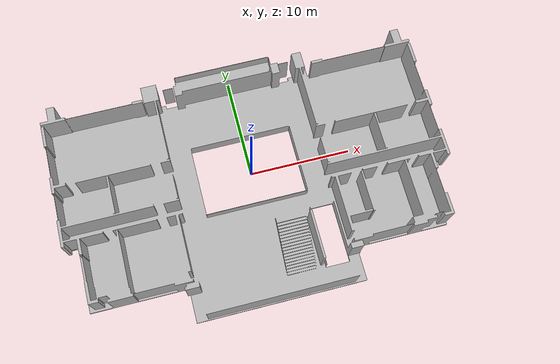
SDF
<?xml version="1.0" ?>
<sdf version="1.9">

  <model name="villa_2F">

    <static>true</static>

    <link name="villa_2F_link">

      <visual name="villa_2F_visual">
        <geometry>
          <mesh>
            <uri>meshes/villa_2F.obj</uri>
          </mesh>
        </geometry>
      </visual>

      <collision name="villa_2F_collision">
        <geometry>
          <mesh>
            <uri>meshes/villa_2F.obj</uri>
          </mesh>
        </geometry>
      </collision>

    </link>

  </model>

</sdf>
